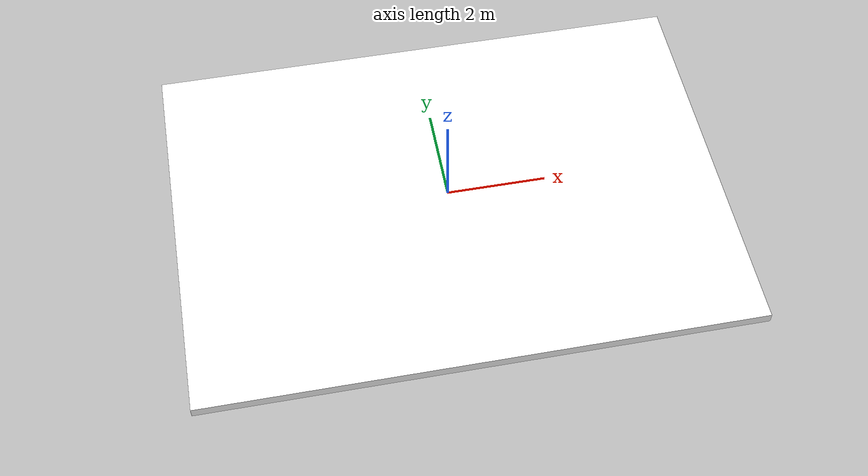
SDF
<sdf version='1.6'>
	<world name='default'>
	<gravity>0 0 -9.8</gravity>
		<model name='field.obj'>
			<static>1</static>
			<pose frame=''>0 0 -0.1 0 0 0</pose>
			<link name='link_d0'>
                <contact>
                    <rolling_friction>0.013</rolling_friction>
                    <friction1> 100 </friction1>
                    <friction2> 50 </friction2>
                </contact>
			<inertial>
			<mass>0</mass>
			<inertia>
			<ixx>0.16667</ixx>
			<ixy>0</ixy>
			<ixz>0</ixz>
			<iyy>0.16667</iyy>
			<iyz>0</iyz>
			<izz>0.16667</izz>
			</inertia>
			</inertial>
			<collision name='collision_1'>
			    <geometry>
                    /* <box> */
                    /*     <size>44 36 0.20</size> */
                    /* </box> */
				    <mesh>
					    <scale>1.0 1.0 1.0</scale>
					    <uri>field.obj</uri>
				    </mesh>
                </geometry>
                <surface>
                    <friction>
                        <bullet>
                            <rolling_friction> 0.013 </rolling_friction>
                            <friction1> 100 </friction1>
                            <friction2> 50 </friction2>
                        </bullet>
                    </friction>
                </surface>
			</collision>
			<visual name='visual'>
				<geometry>
				<mesh>
					<scale>1.0 1.0 1.0</scale>
					<uri>field.obj</uri>
				</mesh>
				</geometry>
			<material>
				<ambient>1 1 1 1</ambient>
				<diffuse>1.00000 1.00000 1.000000 1</diffuse>
				<specular>0.1 .1 .1 1</specular>
				<emissive>0 0 0 0</emissive>
			 </material>
			 </visual>
			 </link>
			</model>
	</world>
</sdf>
